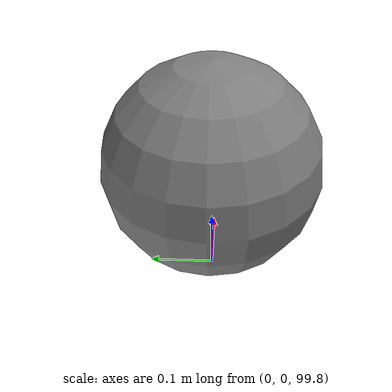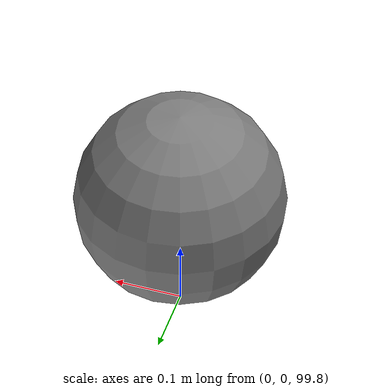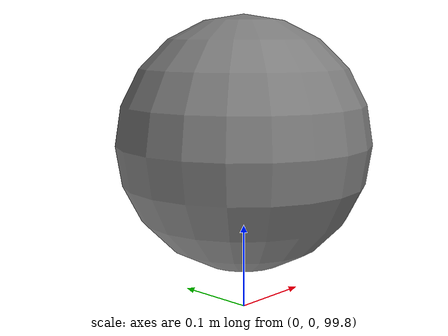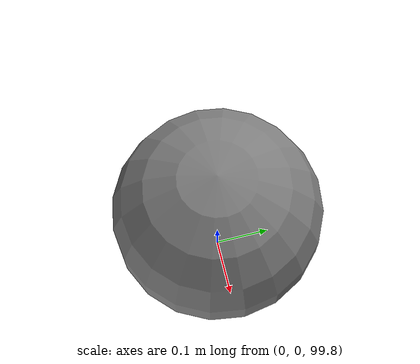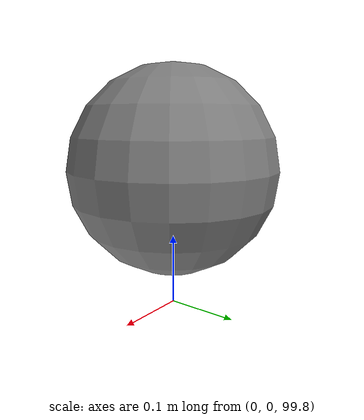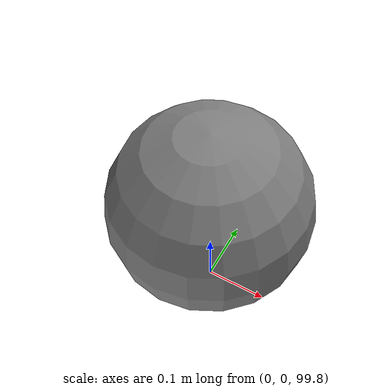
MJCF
<mujoco model="inertia-box-drag">
  <option gravity="0 0 -9.81" timestep="0.001"
          density="1.2" viscosity="0"/>
  <worldbody>
    <body name="sphere" pos="0 0 100">
      <freejoint name="sphere_free"/>
      <geom name="sphere_geom" type="sphere" size="0.15" mass="2.0"/>
    </body>
  </worldbody>
</mujoco>
